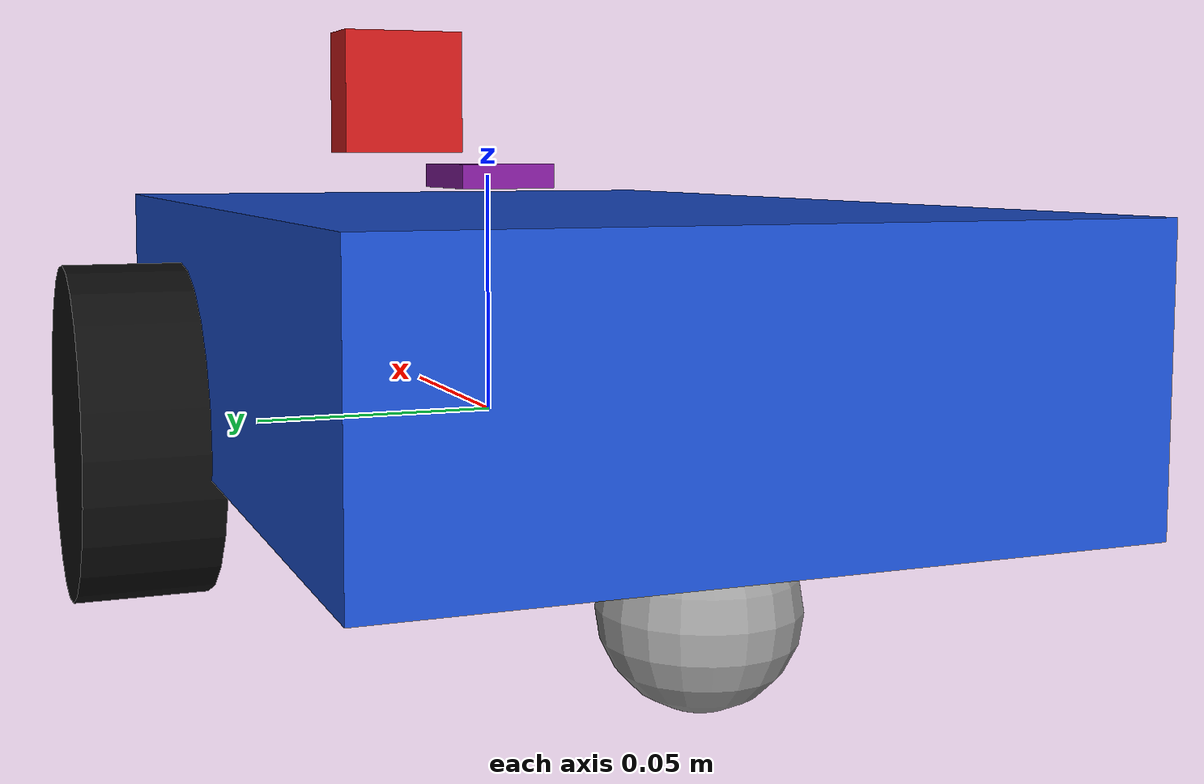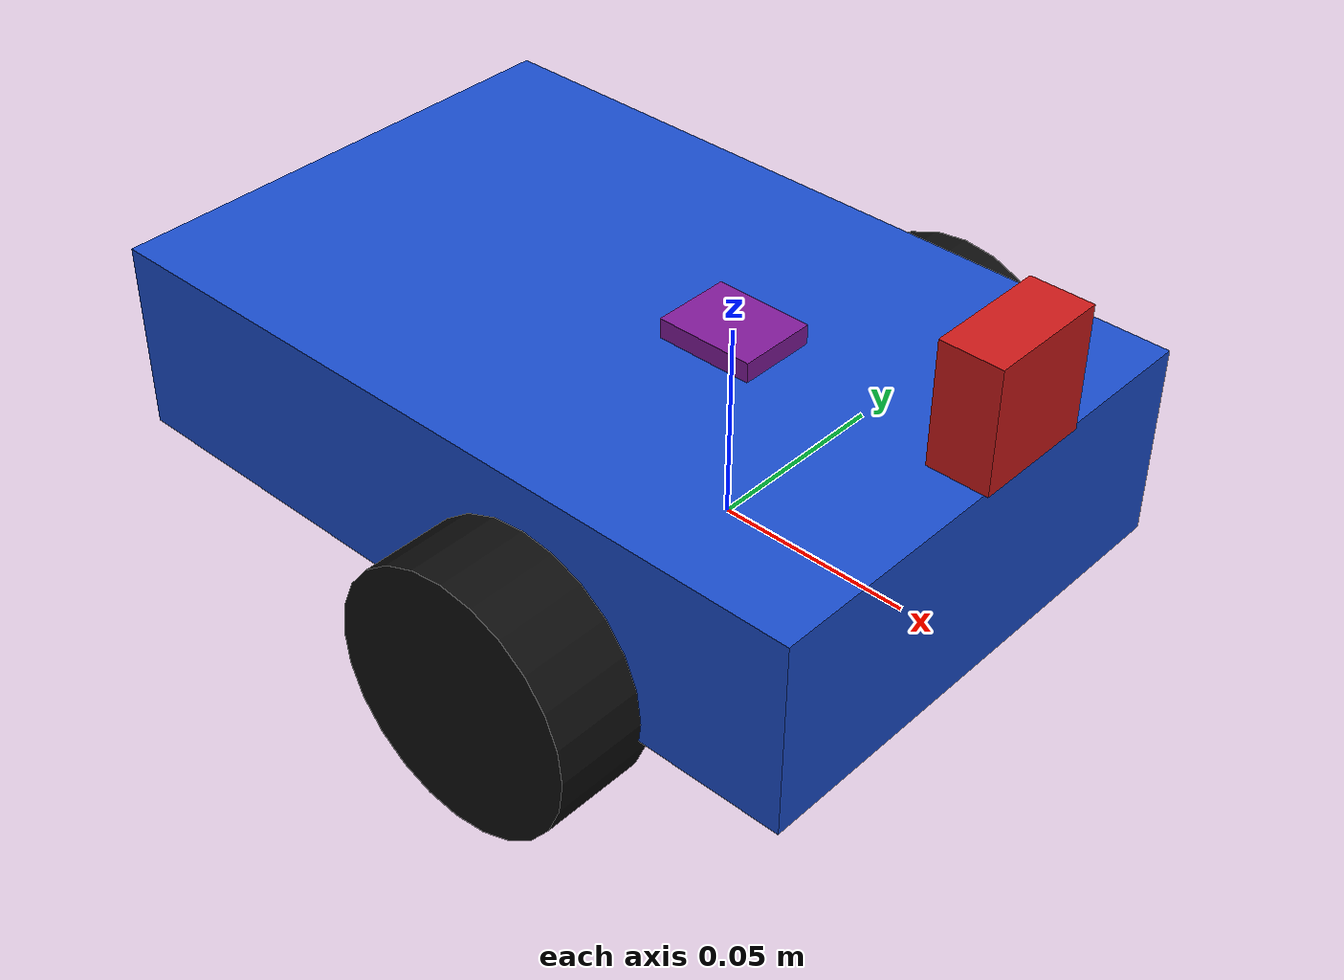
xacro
<?xml version="1.0"?>
<!--
  Two-wheel differential-drive robot car for Gazebo Harmonic.
  Baseline guide robot model for Module 6.
  All lengths are in meters, masses in kilograms, and angles in radians.
-->
<robot name="gazebo_car" xmlns:xacro="http://www.ros.org/wiki/xacro">

  <!-- ===== Dimensions: default guide dimensions ===== -->
  <xacro:property name="chassis_length" value="0.20"/>
  <xacro:property name="chassis_width" value="0.13"/>
  <xacro:property name="chassis_height" value="0.05"/>
  <xacro:property name="chassis_mass" value="0.60"/>
  <!-- Chassis center, measured from the midpoint between the two wheel axles -->
  <xacro:property name="chassis_x" value="-0.03"/>
  <xacro:property name="chassis_z" value="0.02"/>

  <xacro:property name="wheel_radius" value="0.033"/>
  <xacro:property name="wheel_width" value="0.026"/>
  <!-- Distance between the centers of the two drive wheels -->
  <xacro:property name="wheel_separation" value="0.15"/>
  <xacro:property name="wheel_mass" value="0.05"/>

  <!-- The caster touches the ground at the same height as the drive wheels -->
  <xacro:property name="caster_radius" value="0.0165"/>
  <xacro:property name="caster_x" value="-0.10"/>

  <xacro:property name="imu_x" value="0.0"/>
  <xacro:property name="imu_z" value="0.05"/>
  <xacro:property name="camera_x" value="0.07"/>
  <xacro:property name="camera_z" value="0.07"/>

  <!-- ===== Inertia helpers ===== -->
  <xacro:macro name="box_inertia" params="m x y z">
    <inertia ixx="${m*(y*y+z*z)/12}" ixy="0" ixz="0"
             iyy="${m*(x*x+z*z)/12}" iyz="0"
             izz="${m*(x*x+y*y)/12}"/>
  </xacro:macro>
  <xacro:macro name="cylinder_inertia" params="m r h">
    <inertia ixx="${m*(3*r*r+h*h)/12}" ixy="0" ixz="0"
             iyy="${m*(3*r*r+h*h)/12}" iyz="0"
             izz="${m*r*r/2}"/>
  </xacro:macro>

  <!-- ===== Base footprint & Chassis ===== -->
  <link name="base_footprint"/>
  <joint name="base_footprint_joint" type="fixed">
    <parent link="base_footprint"/>
    <child link="base_link"/>
    <origin xyz="0 0 0" rpy="0 0 0"/>
  </joint>

  <!-- base_link sits at the midpoint between the two wheel axles -->
  <link name="base_link">
    <visual>
      <origin xyz="${chassis_x} 0 ${chassis_z}"/>
      <geometry><box size="${chassis_length} ${chassis_width} ${chassis_height}"/></geometry>
      <material name="chassis_blue"><color rgba="0.1 0.3 0.8 1"/></material>
    </visual>
    <collision>
      <origin xyz="${chassis_x} 0 ${chassis_z}"/>
      <geometry><box size="${chassis_length} ${chassis_width} ${chassis_height}"/></geometry>
    </collision>
    <inertial>
      <origin xyz="${chassis_x} 0 ${chassis_z}"/>
      <mass value="${chassis_mass}"/>
      <xacro:box_inertia m="${chassis_mass}" x="${chassis_length}" y="${chassis_width}" z="${chassis_height}"/>
    </inertial>
  </link>

  <!-- ===== Drive wheels ===== -->
  <xacro:macro name="drive_wheel" params="side y_sign">
    <link name="${side}_wheel_link">
      <visual>
        <geometry><cylinder radius="${wheel_radius}" length="${wheel_width}"/></geometry>
        <material name="tire_black"><color rgba="0.05 0.05 0.05 1"/></material>
      </visual>
      <!-- A sphere touches the ground at one point, in the middle of the wheel.
           A cylinder touches at its edges, which makes the robot turn more than
           its wheel odometry calculates. -->
      <collision>
        <geometry><sphere radius="${wheel_radius}"/></geometry>
      </collision>
      <inertial>
        <mass value="${wheel_mass}"/>
        <xacro:cylinder_inertia m="${wheel_mass}" r="${wheel_radius}" h="${wheel_width}"/>
      </inertial>
    </link>
    <!-- The joint turns the wheel on its side so it spins about the robot's y axis -->
    <joint name="${side}_wheel_joint" type="continuous">
      <parent link="base_link"/>
      <child link="${side}_wheel_link"/>
      <origin xyz="0 ${y_sign*wheel_separation/2} 0" rpy="${-pi/2} 0 0"/>
      <axis xyz="0 0 1"/>
    </joint>
    <gazebo reference="${side}_wheel_link">
      <mu1>1.0</mu1>
      <mu2>1.0</mu2>
    </gazebo>
  </xacro:macro>

  <xacro:drive_wheel side="left" y_sign="1"/>
  <xacro:drive_wheel side="right" y_sign="-1"/>

  <!-- ===== Caster ball (no friction, so it slides like a real ball caster) ===== -->
  <link name="caster_link">
    <visual>
      <geometry><sphere radius="${caster_radius}"/></geometry>
      <material name="caster_gray"><color rgba="0.6 0.6 0.6 1"/></material>
    </visual>
    <collision>
      <geometry><sphere radius="${caster_radius}"/></geometry>
    </collision>
    <inertial>
      <mass value="0.01"/>
      <inertia ixx="1e-6" ixy="0" ixz="0" iyy="1e-6" iyz="0" izz="1e-6"/>
    </inertial>
  </link>
  <joint name="caster_joint" type="fixed">
    <parent link="base_link"/>
    <child link="caster_link"/>
    <origin xyz="${caster_x} 0 ${caster_radius - wheel_radius}"/>
  </joint>
  <gazebo reference="caster_link">
    <mu1>0.0</mu1>
    <mu2>0.0</mu2>
  </gazebo>

  <!-- ===== Sensor mounts ===== -->
  <link name="imu_link">
    <visual>
      <geometry><box size="0.025 0.02 0.005"/></geometry>
      <material name="imu_purple"><color rgba="0.5 0.1 0.6 1"/></material>
    </visual>
    <inertial>
      <mass value="0.005"/>
      <inertia ixx="1e-7" ixy="0" ixz="0" iyy="1e-7" iyz="0" izz="1e-7"/>
    </inertial>
  </link>
  <joint name="imu_joint" type="fixed">
    <parent link="base_link"/>
    <child link="imu_link"/>
    <origin xyz="${imu_x} 0 ${imu_z}"/>
  </joint>

  <link name="camera_link">
    <visual>
      <geometry><box size="0.015 0.03 0.03"/></geometry>
      <material name="camera_red"><color rgba="0.8 0.1 0.1 1"/></material>
    </visual>
    <inertial>
      <mass value="0.01"/>
      <inertia ixx="1e-6" ixy="0" ixz="0" iyy="1e-6" iyz="0" izz="1e-6"/>
    </inertial>
  </link>
  <joint name="camera_joint" type="fixed">
    <parent link="base_link"/>
    <child link="camera_link"/>
    <origin xyz="${camera_x} 0 ${camera_z}"/>
  </joint>

  <!-- ===== Gazebo sensors ===== -->
  <gazebo reference="imu_link">
    <sensor name="imu_sensor" type="imu">
      <always_on>true</always_on>
      <update_rate>50</update_rate>
      <topic>/imu</topic>
      <imu>
        <angular_velocity>
          <z><noise type="gaussian"><mean>0</mean><stddev>0.002</stddev></noise></z>
        </angular_velocity>
        <linear_acceleration>
          <x><noise type="gaussian"><mean>0</mean><stddev>0.02</stddev></noise></x>
          <y><noise type="gaussian"><mean>0</mean><stddev>0.02</stddev></noise></y>
        </linear_acceleration>
      </imu>
    </sensor>
  </gazebo>

  <gazebo reference="camera_link">
    <sensor name="camera_sensor" type="camera">
      <always_on>true</always_on>
      <!-- Small image at 10 Hz keeps rendering fast -->
      <update_rate>10</update_rate>
      <topic>/camera/image_raw</topic>
      <camera>
        <horizontal_fov>1.047</horizontal_fov>
        <image>
          <width>320</width>
          <height>240</height>
          <format>R8G8B8</format>
        </image>
        <clip>
          <near>0.05</near>
          <far>20</far>
        </clip>
      </camera>
    </sensor>
  </gazebo>

  <!-- ===== Gazebo Harmonic plugins ===== -->
  <gazebo>
    <!-- Differential drive: listens on /cmd_vel, publishes wheel odometry on /odom -->
    <plugin filename="gz-sim-diff-drive-system"
            name="gz::sim::systems::DiffDrive">
      <left_joint>left_wheel_joint</left_joint>
      <right_joint>right_wheel_joint</right_joint>
      <wheel_separation>${wheel_separation}</wheel_separation>
      <wheel_radius>${wheel_radius}</wheel_radius>
      <max_linear_velocity>0.3</max_linear_velocity>
      <min_linear_velocity>-0.3</min_linear_velocity>
      <max_angular_velocity>1.5</max_angular_velocity>
      <min_angular_velocity>-1.5</min_angular_velocity>
      <max_linear_acceleration>1.0</max_linear_acceleration>
      <min_linear_acceleration>-1.0</min_linear_acceleration>
      <topic>/cmd_vel</topic>
      <odom_topic>/odom</odom_topic>
      <tf_topic>/tf</tf_topic>
      <frame_id>odom</frame_id>
      <child_frame_id>base_link</child_frame_id>
      <odom_publish_frequency>30</odom_publish_frequency>
    </plugin>

    <!-- Publishes wheel angles and speeds on /joint_states -->
    <plugin filename="gz-sim-joint-state-publisher-system"
            name="gz::sim::systems::JointStatePublisher">
      <topic>/joint_states</topic>
    </plugin>

    <!-- Ground Truth Odometry: Publishes true physical pose to detect collisions independent of wheel slip -->
    <plugin filename="gz-sim-odometry-publisher-system"
            name="gz::sim::systems::OdometryPublisher">
      <odom_topic>/model/gazebo_car/odometry</odom_topic>
      <odom_frame>odom</odom_frame>
      <robot_base_frame>base_footprint</robot_base_frame>
      <dimensions>3</dimensions>
    </plugin>
  </gazebo>

</robot>
